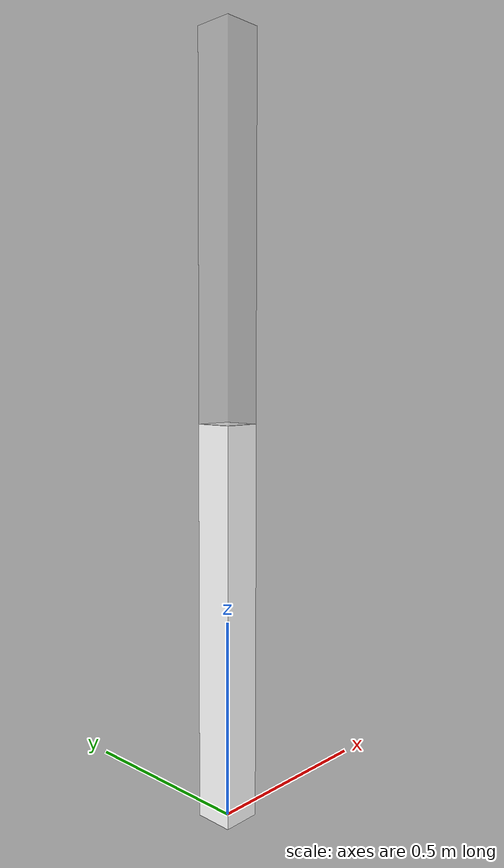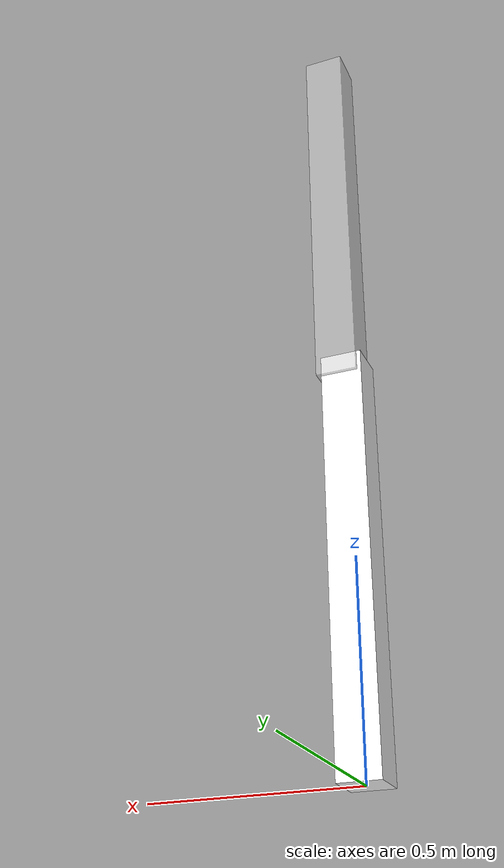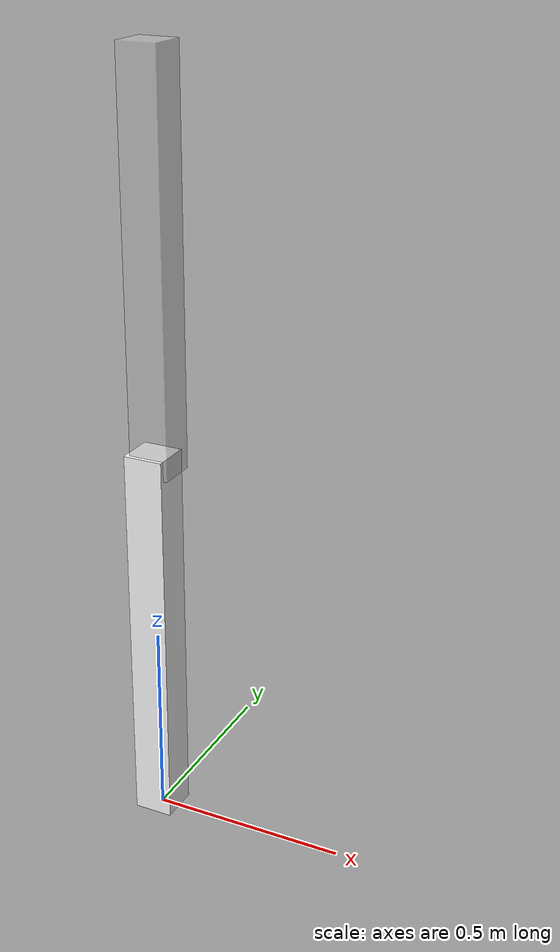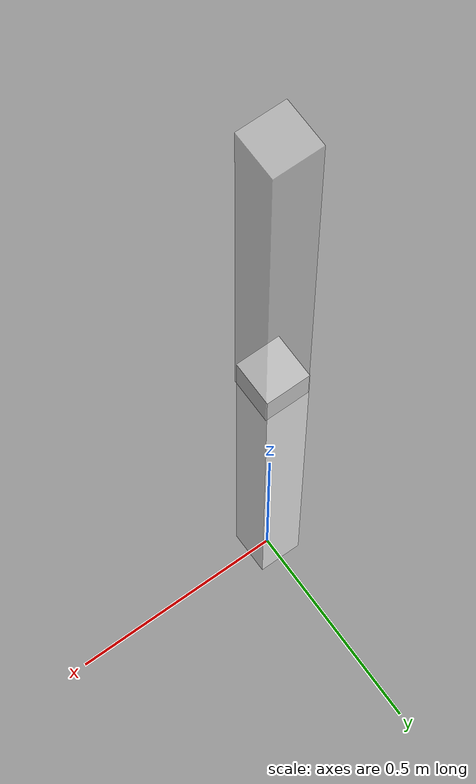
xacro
<robot name="test_robot" xmlns:xacro="http://ros.org/wiki/xacro">
        <link name="base"/>
        <link name="upperarm">
          <visual>
            <geometry>
              <box size="0.1 0.1 1" />
            </geometry>
            <origin xyz="0 0 0.5" rpy="0 0 0"/>
            <material name="white">
              <color rgba="1 1 1 1"/>
            </material>
          </visual>
          <collision>
            <geometry>
                <box size="0.1 0.1 1" />
            </geometry>
            <origin xyz="0 0 0.5" rpy="0 0 0"/>
          </collision>
          <inertial>
            <mass value="1.6"/>
            <origin xyz="0 0 0" rpy="0 0 0"/>
            <inertia ixx="0.006051" iyy="0" izz="0.009098" ixy="0" ixz="0" iyz="0"/>
          </inertial>
        </link>

        <joint name="base_joint" type="fixed">
            <origin xyz="0 0 0" rpy="0 0 0"/>
            <parent link="base"/>
            <child link="upperarm" />
        </joint>

        <link name="lowerarm">
          <visual>
            <geometry>
              <box size="0.1 0.1 1" />
            </geometry>
            <origin xyz="0 0 0.5" rpy="0 0 0"/>
            <material name="gray">
                <color rgba="0.8 0.8 0.8 0.5"/>
            </material>
          </visual>
          <collision>
            <geometry>
                <box size="0.1 0.1 1" />
            </geometry>
            <origin xyz="0 0 0.05" rpy="0 0 0"/>
          </collision>
          <inertial>
            <mass value="1.6"/>
            <origin xyz="0 0 0" rpy="0 0 0"/>
            <inertia ixx="0.006051" iyy="0" izz="0.009098" ixy="0" ixz="0" iyz="0"/>
          </inertial>
        </link>

        <joint name="y_joint" type="continuous">
            <origin xyz="0.01 0.01 0.95" rpy="0 0 0"/>
            <axis xyz="0 1 0"/>
            <parent link="upperarm"/>
            <child link="lowerarm"/>
        </joint>
</robot>
